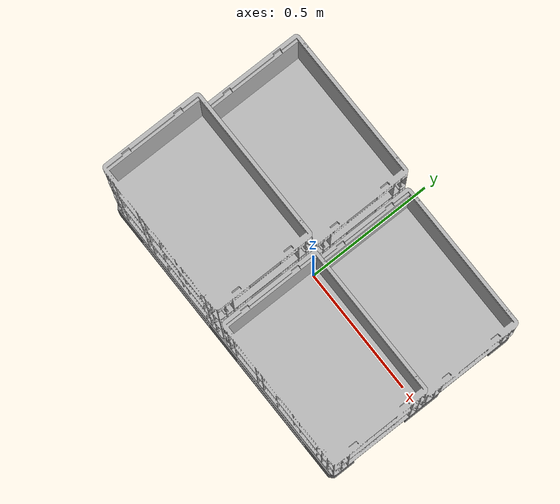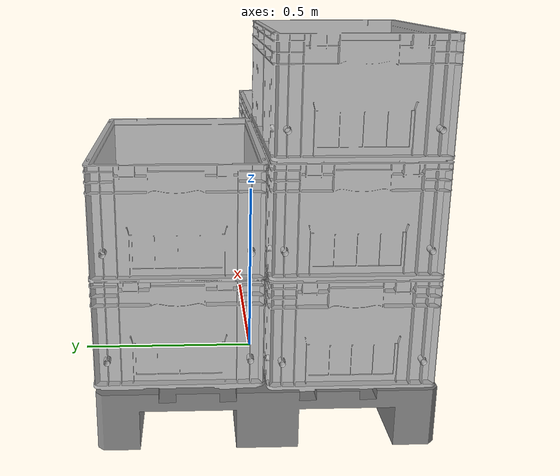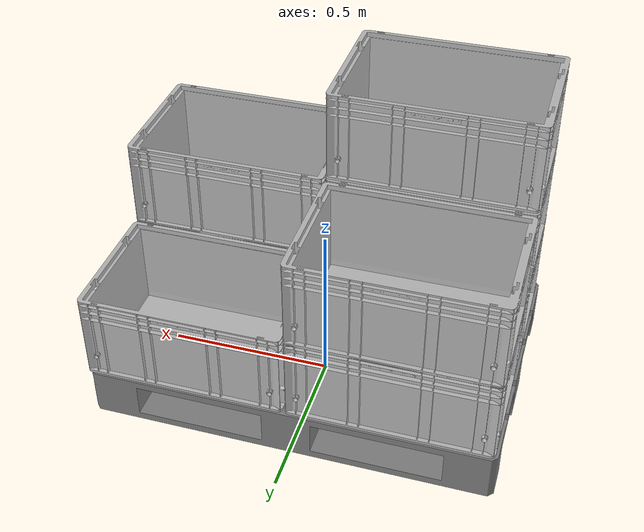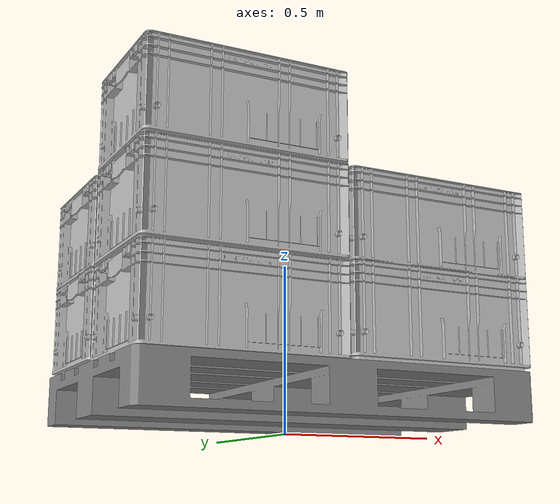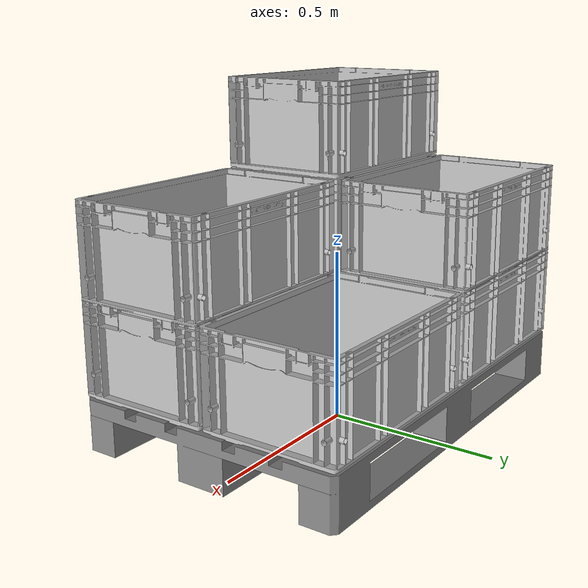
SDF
<?xml version="1.0" ?>
<sdf version="1.5">
  <model name="euro_pallet_loaded_C">
    <include>
      <name>pallet</name>
      <uri>model://euro_pallet</uri>
      <pose>0 0 0.1 0 0 1.57</pose>
    </include>
    <include>
      <name>klt_a</name>
      <uri>model://klt</uri>
      <pose>0.18 0.10 0.17 0 0 0</pose>
    </include>
    <include>
      <name>klt_b</name>
      <uri>model://klt_stack_2</uri>
      <pose>0.18 -0.30 0.15 0 0 0</pose>
    </include>
    <include>
      <name>klt_c</name>
      <uri>model://klt_stack_2</uri>
      <pose>-0.42 0.10 0.15 0 0 0</pose>
    </include>
    <include>
      <name>klt_d</name>
      <uri>model://klt_stack_3</uri>
      <pose>-0.42 -0.30 0.16 0 0 0</pose>
    </include>
    <joint name="pallet_klt_a" type="fixed">
      <parent>pallet::link</parent>
      <child>klt_a::link</child>
      <axis>
        <xyz>0 0 1</xyz>
        <use_parent_model_frame>true</use_parent_model_frame>
      </axis>
    </joint>
    <joint name="pallet_klt_b" type="fixed">
      <parent>pallet::link</parent>
      <child>klt_b::klt_0::link</child>
      <axis>
        <xyz>0 0 1</xyz>
        <use_parent_model_frame>true</use_parent_model_frame>
      </axis>
    </joint>
    <joint name="pallet_klt_c" type="fixed">
      <parent>pallet::link</parent>
      <child>klt_c::klt_0::link</child>
      <axis>
        <xyz>0 0 1</xyz>
        <use_parent_model_frame>true</use_parent_model_frame>
      </axis>
    </joint>
    <joint name="pallet_klt_d" type="fixed">
      <parent>pallet::link</parent>
      <child>klt_d::klt_0::link</child>
      <axis>
        <xyz>0 0 1</xyz>
        <use_parent_model_frame>true</use_parent_model_frame>
      </axis>
    </joint>
  </model>
</sdf>

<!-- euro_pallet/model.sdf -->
<sdf version="1.5">
  <model name="euro_pallet">
    <link name="link">
      <pose>0 0 0 0 0 0</pose>
      <inertial>
        <mass>20.0</mass>
        <inertia>
          <ixx>2.43</ixx>
          <ixy>0</ixy>
          <ixz>0</ixz>
          <iyy>1.10</iyy>
          <iyz>0</iyz>
          <izz>3.47</izz>
        </inertia>
      </inertial>
      <collision name="collision">
        <pose>0 0 0.05 0 0 0</pose>
        <geometry>
          <mesh>
            <uri>model://../model_source/models/euro_pallet/meshes/pallet.dae</uri>
            <scale>0.1 0.1 0.1</scale>
          </mesh>
        </geometry>
      </collision>
      <visual name="visual">
        <pose>0 0 0.05 0 0 0</pose>
        <geometry>
          <mesh>
            <uri>model://../model_source/models/euro_pallet/meshes/pallet.dae</uri>
            <scale>0.1 0.1 0.1</scale>
          </mesh>
        </geometry>
      </visual>
    </link>
  </model>
</sdf>

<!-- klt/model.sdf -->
<sdf version="1.6">
  <model name="KLT">
    <link name="link">
      <pose>0 0 0 0 0 0</pose>
      <inertial>
        <mass>1.0</mass>
        <inertia>
          <ixx>0.60</ixx>
          <ixy>0</ixy>
          <ixz>0</ixz>
          <iyy>0.40</iyy>
          <iyz>0</iyz>
          <izz>0.28</izz>
        </inertia>
      </inertial>
      <collision name="collision">
        <pose>0 0 0 0 0 0</pose>
        <geometry>
          <mesh>
            <scale>0.001 0.001 0.001</scale>
            <uri>model://klt/meshes/klt.obj</uri>
          </mesh>
        </geometry>
      </collision>
      <visual name="visual">
        <geometry>
          <mesh>
            <scale>0.001 0.001 0.001</scale>
            <uri>model://klt/meshes/klt.obj</uri>
          </mesh>
        </geometry>
      </visual>
    </link>
  </model>
</sdf>

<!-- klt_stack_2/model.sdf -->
<sdf version="1.5">
  <model name="klt_stack_2">
    <include>
      <name>klt_0</name>
      <uri>model://klt</uri>
      <pose>0 0 0.02 0 0 0</pose>
    </include>
    <include>
      <name>klt_1</name>
      <uri>model://klt</uri>
      <pose>0 0 0.28 0 0 0</pose>
    </include>
    <joint name="link_link" type="fixed">
      <parent>klt_1::link</parent>
      <child>klt_0::link</child>
      <axis>
        <xyz>0 0 1</xyz>
        <use_parent_model_frame>true</use_parent_model_frame>
      </axis>
    </joint>
  </model>
</sdf>

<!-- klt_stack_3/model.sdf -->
<sdf version="1.5">
  <model name="klt_stack_3">
    <include>
      <name>klt_0</name>
      <uri>model://klt</uri>
      <pose>0 0 0 0 0 0</pose>
    </include>
    <include>
      <name>klt_1</name>
      <uri>model://klt</uri>
      <pose>0 0 0.27 0 0 0</pose>
    </include>
    <include>
      <name>klt_2</name>
      <uri>model://klt</uri>
      <pose>0 0 0.54 0 0 0</pose>
    </include>
    <joint name="link0_link1" type="fixed">
      <child>klt_0::link</child>
      <parent>klt_1::link</parent>
      <axis>
        <xyz>0 0 1</xyz>
        <use_parent_model_frame>true</use_parent_model_frame>
      </axis>
    </joint>
    <joint name="link1_link2" type="fixed">
      <parent>klt_1::link</parent>
      <child>klt_2::link</child>
      <axis>
        <xyz>0 0 1</xyz>
        <use_parent_model_frame>true</use_parent_model_frame>
      </axis>
    </joint>
  </model>
</sdf>
